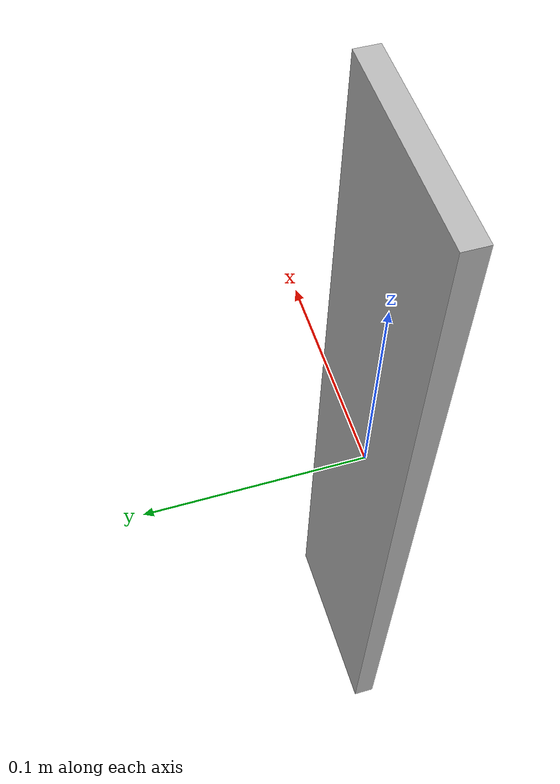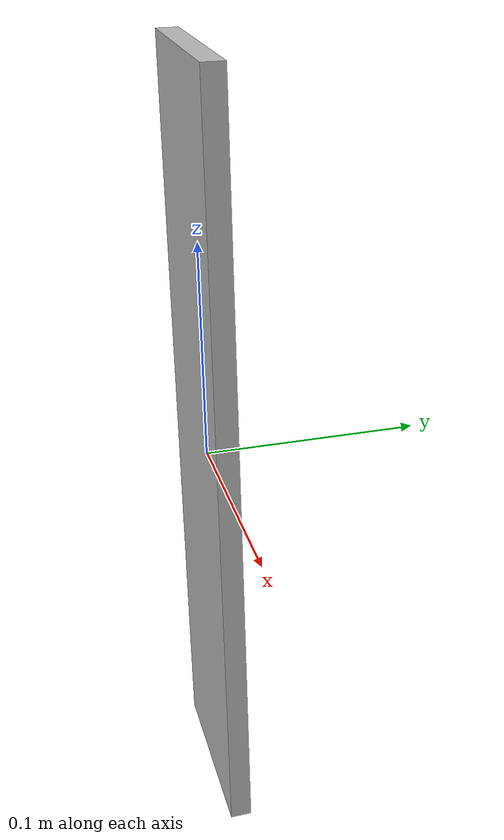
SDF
<?xml version='1.0'?>
<sdf version='1.6'>
  <model name='button_panel_pressed'>
    <link name='link_0'>
      <pose frame=''>0 0 0 0 -0 0</pose>
      <inertial>
        <mass>1</mass>
        <inertia>
          <ixx>0.166667</ixx>
          <ixy>0</ixy>
          <ixz>0</ixz>
          <iyy>0.166667</iyy>
          <iyz>0</iyz>
          <izz>0.166667</izz>
        </inertia>
        <pose frame=''>0 0 0 0 -0 0</pose>
      </inertial>
      <gravity>1</gravity>
      <self_collide>0</self_collide>
      <kinematic>0</kinematic>
      <visual name='visual'>
        <pose frame=''>0 0 0 0 -0 0</pose>
        <geometry>
          <box>
            <size>0.09 0.01 0.36</size>
          </box>
        </geometry>
        <material>
          <script>
            <uri>model://button_panel_pressed/materials/scripts</uri>
            <uri>model://button_panel_pressed/materials/textures</uri>
            <name>Button_panel_pressed/Picture</name>
          </script>
        </material>
        <transparency>0</transparency>
        <cast_shadows>1</cast_shadows>
      </visual>
    </link>
    <static>1</static>
    <allow_auto_disable>1</allow_auto_disable>
  </model>
</sdf>
